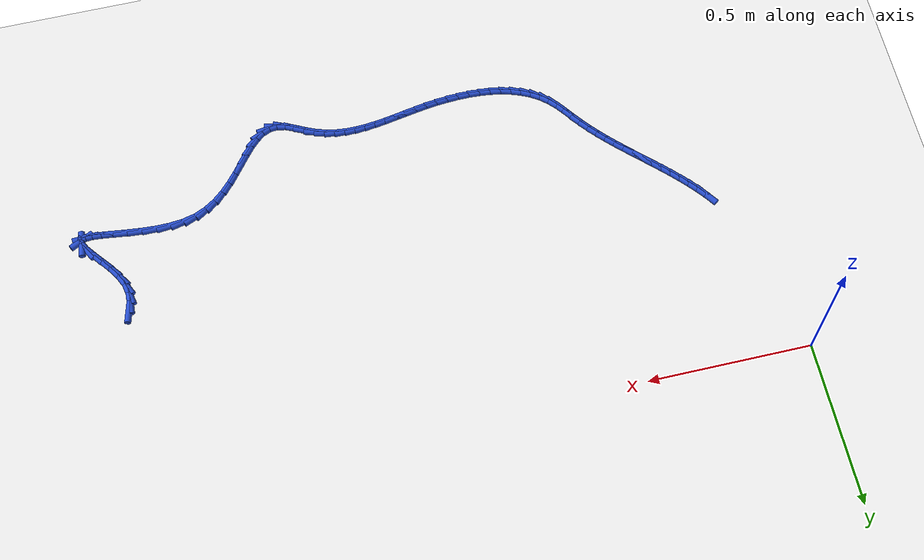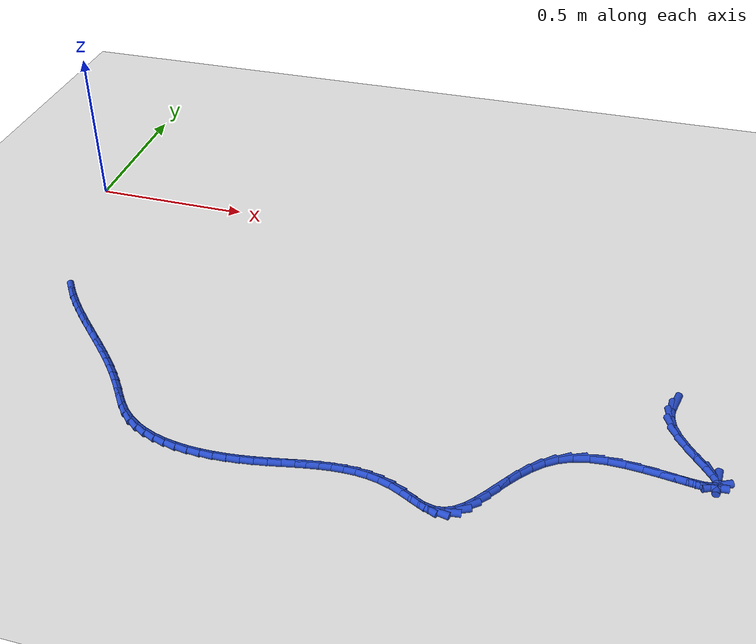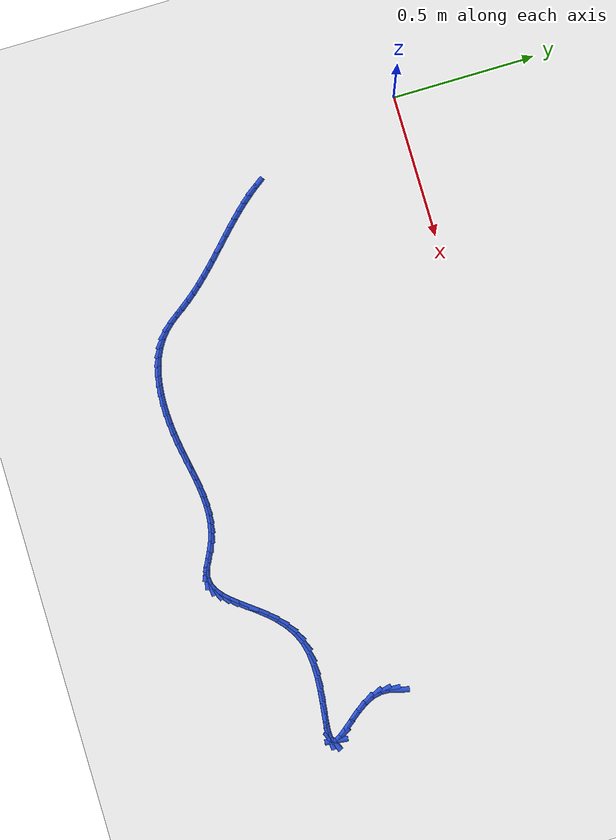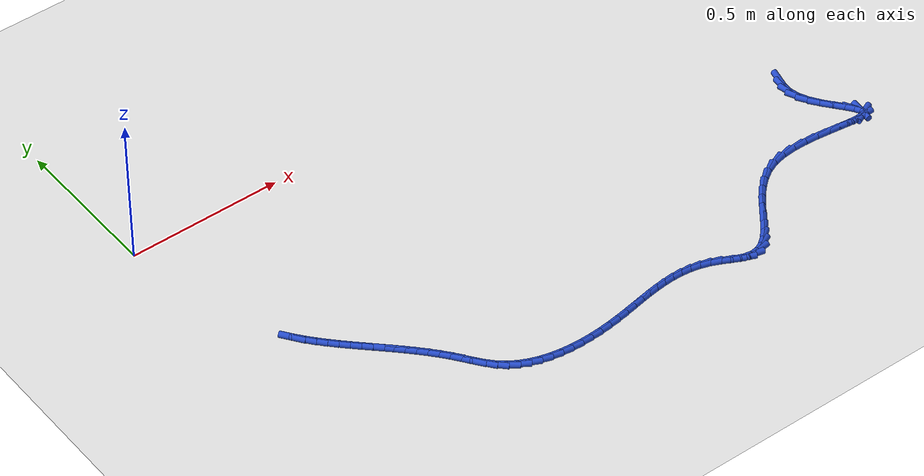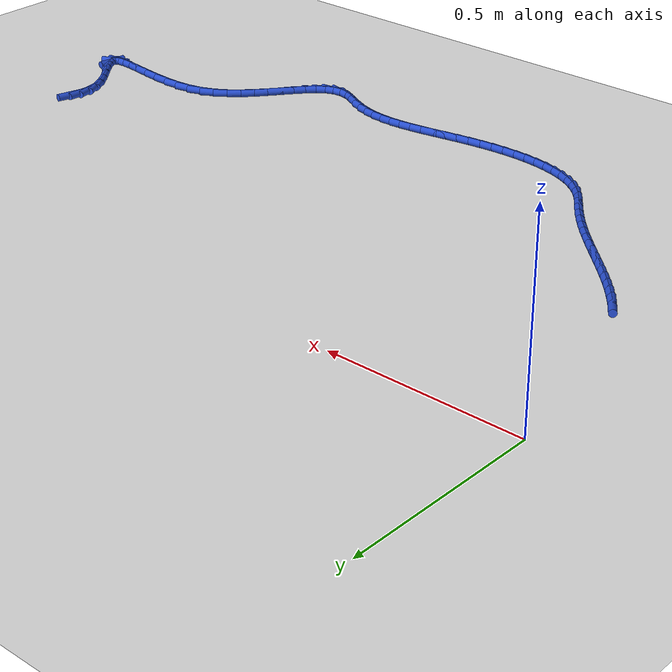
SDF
<sdf version="1.6">
 <world name="default">
  <model name="ground_plane">
   <static>1</static>
   <link name="link">
    <collision name="collision">
     <geometry><plane><normal>0 0 1</normal><size>100 100</size></plane></geometry>
     <surface><friction><ode><mu>100</mu><mu2>50</mu2></ode></friction></surface>
    </collision>
    <visual name="visual">
     <cast_shadows>0</cast_shadows>
     <geometry><plane><normal>0 0 1</normal><size>100 100</size></plane></geometry>
     <material>
      <script><uri>file://media/materials/scripts/gazebo.material</uri><name>Gazebo/WhiteGlow</name></script>
     </material>
    </visual>
   </link>
  </model>
  <model name="line">
   <link name="link_135">
    <pose>1.943686928564302 -0.5652032840955692 0.01 0 1.57 1.309454143577159</pose>
    <collision name="collision">
     <geometry><cylinder><radius>0.01</radius><length>0.08</length></cylinder></geometry>
    </collision>
    <visual name="visual">
     <material>
      <script><name>Gazebo/Blue</name><uri>file://media/materials/scripts/gazebo.material</uri></script>
     </material>
     <geometry><cylinder><radius>0.01</radius><length>0.08</length></cylinder></geometry>
    </visual>
   </link>
   <link name="link_136">
    <pose>1.9362048129154479 -0.593178074391091 0.01 0 1.57 1.531690381815377</pose>
    <collision name="collision">
     <geometry><cylinder><radius>0.01</radius><length>0.08</length></cylinder></geometry>
    </collision>
    <visual name="visual">
     <material>
      <script><name>Gazebo/Blue</name><uri>file://media/materials/scripts/gazebo.material</uri></script>
     </material>
     <geometry><cylinder><radius>0.01</radius><length>0.08</length></cylinder></geometry>
    </visual>
   </link>
   <link name="link_137">
    <pose>1.9350808132411823 -0.6219058457888912 0.01 0 1.57 -1.3657696198299845</pose>
    <collision name="collision">
     <geometry><cylinder><radius>0.01</radius><length>0.08</length></cylinder></geometry>
    </collision>
    <visual name="visual">
     <material>
      <script><name>Gazebo/Blue</name><uri>file://media/materials/scripts/gazebo.material</uri></script>
     </material>
     <geometry><cylinder><radius>0.01</radius><length>0.08</length></cylinder></geometry>
    </visual>
   </link>
   <link name="link_138">
    <pose>1.941255157980657 -0.6515975215187342 0.01 0 1.57 -1.1382711557492136</pose>
    <collision name="collision">
     <geometry><cylinder><radius>0.01</radius><length>0.08</length></cylinder></geometry>
    </collision>
    <visual name="visual">
     <material>
      <script><name>Gazebo/Blue</name><uri>file://media/materials/scripts/gazebo.material</uri></script>
     </material>
     <geometry><cylinder><radius>0.01</radius><length>0.08</length></cylinder></geometry>
    </visual>
   </link>
   <link name="link_139">
    <pose>1.9554730133591482 -0.6823933725908009 0.01 0 1.57 -0.9889522151023996</pose>
    <collision name="collision">
     <geometry><cylinder><radius>0.01</radius><length>0.08</length></cylinder></geometry>
    </collision>
    <visual name="visual">
     <material>
      <script><name>Gazebo/Blue</name><uri>file://media/materials/scripts/gazebo.material</uri></script>
     </material>
     <geometry><cylinder><radius>0.01</radius><length>0.08</length></cylinder></geometry>
    </visual>
   </link>
   <link name="link_140">
    <pose>1.9759456231310004 -0.7135158743885804 0.01 0 1.57 -0.9136879942157506</pose>
    <collision name="collision">
     <geometry><cylinder><radius>0.01</radius><length>0.08</length></cylinder></geometry>
    </collision>
    <visual name="visual">
     <material>
      <script><name>Gazebo/Blue</name><uri>file://media/materials/scripts/gazebo.material</uri></script>
     </material>
     <geometry><cylinder><radius>0.01</radius><length>0.08</length></cylinder></geometry>
    </visual>
   </link>
   <link name="link_141">
    <pose>1.9991133969310126 -0.7435460999522928 0.01 0 1.57 -0.8902662139354166</pose>
    <collision name="collision">
     <geometry><cylinder><radius>0.01</radius><length>0.08</length></cylinder></geometry>
    </collision>
    <visual name="visual">
     <material>
      <script><name>Gazebo/Blue</name><uri>file://media/materials/scripts/gazebo.material</uri></script>
     </material>
     <geometry><cylinder><radius>0.01</radius><length>0.08</length></cylinder></geometry>
    </visual>
   </link>
   <link name="link_142">
    <pose>2.0213804690759773 -0.7710519832744562 0.01 0 1.57 -0.9243557936976852</pose>
    <collision name="collision">
     <geometry><cylinder><radius>0.01</radius><length>0.08</length></cylinder></geometry>
    </collision>
    <visual name="visual">
     <material>
      <script><name>Gazebo/Blue</name><uri>file://media/materials/scripts/gazebo.material</uri></script>
     </material>
     <geometry><cylinder><radius>0.01</radius><length>0.08</length></cylinder></geometry>
    </visual>
   </link>
   <link name="link_143">
    <pose>2.0391509738826885 -0.7946014583475888 0.01 0 1.57 -1.0811732387302369</pose>
    <collision name="collision">
     <geometry><cylinder><radius>0.01</radius><length>0.08</length></cylinder></geometry>
    </collision>
    <visual name="visual">
     <material>
      <script><name>Gazebo/Blue</name><uri>file://media/materials/scripts/gazebo.material</uri></script>
     </material>
     <geometry><cylinder><radius>0.01</radius><length>0.08</length></cylinder></geometry>
    </visual>
   </link>
   <link name="link_144">
    <pose>2.048829045667937 -0.8127624591642073 0.01 0 1.57 1.4550749162569783</pose>
    <collision name="collision">
     <geometry><cylinder><radius>0.01</radius><length>0.08</length></cylinder></geometry>
    </collision>
    <visual name="visual">
     <material>
      <script><name>Gazebo/Blue</name><uri>file://media/materials/scripts/gazebo.material</uri></script>
     </material>
     <geometry><cylinder><radius>0.01</radius><length>0.08</length></cylinder></geometry>
    </visual>
   </link>
   <link name="link_145">
    <pose>2.0474711005845543 -0.8244446365852564 0.01 0 1.57 0.4564151952336193</pose>
    <collision name="collision">
     <geometry><cylinder><radius>0.01</radius><length>0.08</length></cylinder></geometry>
    </collision>
    <visual name="visual">
     <material>
      <script><name>Gazebo/Blue</name><uri>file://media/materials/scripts/gazebo.material</uri></script>
     </material>
     <geometry><cylinder><radius>0.01</radius><length>0.08</length></cylinder></geometry>
    </visual>
   </link>
   <link name="link_146">
    <pose>2.035501081922877 -0.8303218188014732 0.01 0 1.57 0.062253946918255774</pose>
    <collision name="collision">
     <geometry><cylinder><radius>0.01</radius><length>0.08</length></cylinder></geometry>
    </collision>
    <visual name="visual">
     <material>
      <script><name>Gazebo/Blue</name><uri>file://media/materials/scripts/gazebo.material</uri></script>
     </material>
     <geometry><cylinder><radius>0.01</radius><length>0.08</length></cylinder></geometry>
    </visual>
   </link>
   <link name="link_147">
    <pose>2.0144265000245123 -0.8316354922136412 0.01 0 1.57 -0.06992417771216018</pose>
    <collision name="collision">
     <geometry><cylinder><radius>0.01</radius><length>0.08</length></cylinder></geometry>
    </collision>
    <visual name="visual">
     <material>
      <script><name>Gazebo/Blue</name><uri>file://media/materials/scripts/gazebo.material</uri></script>
     </material>
     <geometry><cylinder><radius>0.01</radius><length>0.08</length></cylinder></geometry>
    </visual>
   </link>
   <link name="link_148">
    <pose>1.9857553821935419 -0.8296274140484176 0.01 0 1.57 -0.11707198856153848</pose>
    <collision name="collision">
     <geometry><cylinder><radius>0.01</radius><length>0.08</length></cylinder></geometry>
    </collision>
    <visual name="visual">
     <material>
      <script><name>Gazebo/Blue</name><uri>file://media/materials/scripts/gazebo.material</uri></script>
     </material>
     <geometry><cylinder><radius>0.01</radius><length>0.08</length></cylinder></geometry>
    </visual>
   </link>
   <link name="link_149">
    <pose>1.950995755734048 -0.8255393415324594 0.01 0 1.57 -0.12457514145057941</pose>
    <collision name="collision">
     <geometry><cylinder><radius>0.01</radius><length>0.08</length></cylinder></geometry>
    </collision>
    <visual name="visual">
     <material>
      <script><name>Gazebo/Blue</name><uri>file://media/materials/scripts/gazebo.material</uri></script>
     </material>
     <geometry><cylinder><radius>0.01</radius><length>0.08</length></cylinder></geometry>
    </visual>
   </link>
   <link name="link_150">
    <pose>1.9116556479501141 -0.8206130318924243 0.01 0 1.57 -0.10623648999890499</pose>
    <collision name="collision">
     <geometry><cylinder><radius>0.01</radius><length>0.08</length></cylinder></geometry>
    </collision>
    <visual name="visual">
     <material>
      <script><name>Gazebo/Blue</name><uri>file://media/materials/scripts/gazebo.material</uri></script>
     </material>
     <geometry><cylinder><radius>0.01</radius><length>0.08</length></cylinder></geometry>
    </visual>
   </link>
   <link name="link_151">
    <pose>1.8692430861458225 -0.8160902423549692 0.01 0 1.57 -0.06533908417008316</pose>
    <collision name="collision">
     <geometry><cylinder><radius>0.01</radius><length>0.08</length></cylinder></geometry>
    </collision>
    <visual name="visual">
     <material>
      <script><name>Gazebo/Blue</name><uri>file://media/materials/scripts/gazebo.material</uri></script>
     </material>
     <geometry><cylinder><radius>0.01</radius><length>0.08</length></cylinder></geometry>
    </visual>
   </link>
   <link name="link_152">
    <pose>1.8252660976252548 -0.8132127301467512 0.01 0 1.57 0.00021625289297713047</pose>
    <collision name="collision">
     <geometry><cylinder><radius>0.01</radius><length>0.08</length></cylinder></geometry>
    </collision>
    <visual name="visual">
     <material>
      <script><name>Gazebo/Blue</name><uri>file://media/materials/scripts/gazebo.material</uri></script>
     </material>
     <geometry><cylinder><radius>0.01</radius><length>0.08</length></cylinder></geometry>
    </visual>
   </link>
   <link name="link_153">
    <pose>1.781232709692492 -0.8132222524944277 0.01 0 1.57 0.09688088846005076</pose>
    <collision name="collision">
     <geometry><cylinder><radius>0.01</radius><length>0.08</length></cylinder></geometry>
    </collision>
    <visual name="visual">
     <material>
      <script><name>Gazebo/Blue</name><uri>file://media/materials/scripts/gazebo.material</uri></script>
     </material>
     <geometry><cylinder><radius>0.01</radius><length>0.08</length></cylinder></geometry>
    </visual>
   </link>
   <link name="link_154">
    <pose>1.7386509496516196 -0.817360566624656 0.01 0 1.57 0.23553138282517894</pose>
    <collision name="collision">
     <geometry><cylinder><radius>0.01</radius><length>0.08</length></cylinder></geometry>
    </collision>
    <visual name="visual">
     <material>
      <script><name>Gazebo/Blue</name><uri>file://media/materials/scripts/gazebo.material</uri></script>
     </material>
     <geometry><cylinder><radius>0.01</radius><length>0.08</length></cylinder></geometry>
    </visual>
   </link>
   <link name="link_155">
    <pose>1.699028757084384 -0.8268693230305725 0.01 0 1.57 0.4137521122782563</pose>
    <collision name="collision">
     <geometry><cylinder><radius>0.01</radius><length>0.08</length></cylinder></geometry>
    </collision>
    <visual name="visual">
     <material>
      <script><name>Gazebo/Blue</name><uri>file://media/materials/scripts/gazebo.material</uri></script>
     </material>
     <geometry><cylinder><radius>0.01</radius><length>0.08</length></cylinder></geometry>
    </visual>
   </link>
   <link name="link_156">
    <pose>1.6634607128892744 -0.8424872304158302 0.01 0 1.57 0.5794523239279763</pose>
    <collision name="collision">
     <geometry><cylinder><radius>0.01</radius><length>0.08</length></cylinder></geometry>
    </collision>
    <visual name="visual">
     <material>
      <script><name>Gazebo/Blue</name><uri>file://media/materials/scripts/gazebo.material</uri></script>
     </material>
     <geometry><cylinder><radius>0.01</radius><length>0.08</length></cylinder></geometry>
    </visual>
   </link>
   <link name="link_157">
    <pose>1.6316733331417934 -0.8632884456116601 0.01 0 1.57 0.7132968622097967</pose>
    <collision name="collision">
     <geometry><cylinder><radius>0.01</radius><length>0.08</length></cylinder></geometry>
    </collision>
    <visual name="visual">
     <material>
      <script><name>Gazebo/Blue</name><uri>file://media/materials/scripts/gazebo.material</uri></script>
     </material>
     <geometry><cylinder><radius>0.01</radius><length>0.08</length></cylinder></geometry>
    </visual>
   </link>
   <link name="link_158">
    <pose>1.6031104923713968 -0.8880032298189146 0.01 0 1.57 0.8128861399773062</pose>
    <collision name="collision">
     <geometry><cylinder><radius>0.01</radius><length>0.08</length></cylinder></geometry>
    </collision>
    <visual name="visual">
     <material>
      <script><name>Gazebo/Blue</name><uri>file://media/materials/scripts/gazebo.material</uri></script>
     </material>
     <geometry><cylinder><radius>0.01</radius><length>0.08</length></cylinder></geometry>
    </visual>
   </link>
   <link name="link_159">
    <pose>1.5772160651075402 -0.9153618442384474 0.01 0 1.57 0.879390241149504</pose>
    <collision name="collision">
     <geometry><cylinder><radius>0.01</radius><length>0.08</length></cylinder></geometry>
    </collision>
    <visual name="visual">
     <material>
      <script><name>Gazebo/Blue</name><uri>file://media/materials/scripts/gazebo.material</uri></script>
     </material>
     <geometry><cylinder><radius>0.01</radius><length>0.08</length></cylinder></geometry>
    </visual>
   </link>
   <link name="link_160">
    <pose>1.5534339258796792 -0.9440945500711126 0.01 0 1.57 0.9141509893890772</pose>
    <collision name="collision">
     <geometry><cylinder><radius>0.01</radius><length>0.08</length></cylinder></geometry>
    </collision>
    <visual name="visual">
     <material>
      <script><name>Gazebo/Blue</name><uri>file://media/materials/scripts/gazebo.material</uri></script>
     </material>
     <geometry><cylinder><radius>0.01</radius><length>0.08</length></cylinder></geometry>
    </visual>
   </link>
   <link name="link_161">
    <pose>1.5312079492172694 -0.9729316085177643 0.01 0 1.57 0.9164634974692445</pose>
    <collision name="collision">
     <geometry><cylinder><radius>0.01</radius><length>0.08</length></cylinder></geometry>
    </collision>
    <visual name="visual">
     <material>
      <script><name>Gazebo/Blue</name><uri>file://media/materials/scripts/gazebo.material</uri></script>
     </material>
     <geometry><cylinder><radius>0.01</radius><length>0.08</length></cylinder></geometry>
    </visual>
   </link>
   <link name="link_162">
    <pose>1.5099820096497654 -1.000603280779256 0.01 0 1.57 0.8818958102058948</pose>
    <collision name="collision">
     <geometry><cylinder><radius>0.01</radius><length>0.08</length></cylinder></geometry>
    </collision>
    <visual name="visual">
     <material>
      <script><name>Gazebo/Blue</name><uri>file://media/materials/scripts/gazebo.material</uri></script>
     </material>
     <geometry><cylinder><radius>0.01</radius><length>0.08</length></cylinder></geometry>
    </visual>
   </link>
   <link name="link_163">
    <pose>1.4891999817066248 -1.0258398280564403 0.01 0 1.57 0.8004218485665678</pose>
    <collision name="collision">
     <geometry><cylinder><radius>0.01</radius><length>0.08</length></cylinder></geometry>
    </collision>
    <visual name="visual">
     <material>
      <script><name>Gazebo/Blue</name><uri>file://media/materials/scripts/gazebo.material</uri></script>
     </material>
     <geometry><cylinder><radius>0.01</radius><length>0.08</length></cylinder></geometry>
    </visual>
   </link>
   <link name="link_164">
    <pose>1.4683057399173023 -1.0473715115501718 0.01 0 1.57 0.6548349566320318</pose>
    <collision name="collision">
     <geometry><cylinder><radius>0.01</radius><length>0.08</length></cylinder></geometry>
    </collision>
    <visual name="visual">
     <material>
      <script><name>Gazebo/Blue</name><uri>file://media/materials/scripts/gazebo.material</uri></script>
     </material>
     <geometry><cylinder><radius>0.01</radius><length>0.08</length></cylinder></geometry>
    </visual>
   </link>
   <link name="link_165">
    <pose>1.4467431588112536 -1.0639285924613042 0.01 0 1.57 0.42498930825960324</pose>
    <collision name="collision">
     <geometry><cylinder><radius>0.01</radius><length>0.08</length></cylinder></geometry>
    </collision>
    <visual name="visual">
     <material>
      <script><name>Gazebo/Blue</name><uri>file://media/materials/scripts/gazebo.material</uri></script>
     </material>
     <geometry><cylinder><radius>0.01</radius><length>0.08</length></cylinder></geometry>
    </visual>
   </link>
   <link name="link_166">
    <pose>1.4239561129179332 -1.074241331990691 0.01 0 1.57 0.1134275469461102</pose>
    <collision name="collision">
     <geometry><cylinder><radius>0.01</radius><length>0.08</length></cylinder></geometry>
    </collision>
    <visual name="visual">
     <material>
      <script><name>Gazebo/Blue</name><uri>file://media/materials/scripts/gazebo.material</uri></script>
     </material>
     <geometry><cylinder><radius>0.01</radius><length>0.08</length></cylinder></geometry>
    </visual>
   </link>
   <link name="link_167">
    <pose>1.3993884767667988 -1.0770399913391855 0.01 0 1.57 -0.21298570388281002</pose>
    <collision name="collision">
     <geometry><cylinder><radius>0.01</radius><length>0.08</length></cylinder></geometry>
    </collision>
    <visual name="visual">
     <material>
      <script><name>Gazebo/Blue</name><uri>file://media/materials/scripts/gazebo.material</uri></script>
     </material>
     <geometry><cylinder><radius>0.01</radius><length>0.08</length></cylinder></geometry>
    </visual>
   </link>
   <link name="link_168">
    <pose>1.3725271786767472 -1.0712308116265927 0.01 0 1.57 -0.4101449970230879</pose>
    <collision name="collision">
     <geometry><cylinder><radius>0.01</radius><length>0.08</length></cylinder></geometry>
    </collision>
    <visual name="visual">
     <material>
      <script><name>Gazebo/Blue</name><uri>file://media/materials/scripts/gazebo.material</uri></script>
     </material>
     <geometry><cylinder><radius>0.01</radius><length>0.08</length></cylinder></geometry>
    </visual>
   </link>
   <link name="link_169">
    <pose>1.343573975380678 -1.058641854513692 0.01 0 1.57 -0.463826134459821</pose>
    <collision name="collision">
     <geometry><cylinder><radius>0.01</radius><length>0.08</length></cylinder></geometry>
    </collision>
    <visual name="visual">
     <material>
      <script><name>Gazebo/Blue</name><uri>file://media/materials/scripts/gazebo.material</uri></script>
     </material>
     <geometry><cylinder><radius>0.01</radius><length>0.08</length></cylinder></geometry>
    </visual>
   </link>
   <link name="link_170">
    <pose>1.3133194119864406 -1.0435078207015178 0.01 0 1.57 -0.41194430460951686</pose>
    <collision name="collision">
     <geometry><cylinder><radius>0.01</radius><length>0.08</length></cylinder></geometry>
    </collision>
    <visual name="visual">
     <material>
      <script><name>Gazebo/Blue</name><uri>file://media/materials/scripts/gazebo.material</uri></script>
     </material>
     <geometry><cylinder><radius>0.01</radius><length>0.08</length></cylinder></geometry>
    </visual>
   </link>
   <link name="link_171">
    <pose>1.2825594284735298 -1.0300674072517235 0.01 0 1.57 -0.3018974104742478</pose>
    <collision name="collision">
     <geometry><cylinder><radius>0.01</radius><length>0.08</length></cylinder></geometry>
    </collision>
    <visual name="visual">
     <material>
      <script><name>Gazebo/Blue</name><uri>file://media/materials/scripts/gazebo.material</uri></script>
     </material>
     <geometry><cylinder><radius>0.01</radius><length>0.08</length></cylinder></geometry>
    </visual>
   </link>
   <link name="link_172">
    <pose>1.251713542465014 -1.020461491098082 0.01 0 1.57 -0.1939978709298254</pose>
    <collision name="collision">
     <geometry><cylinder><radius>0.01</radius><length>0.08</length></cylinder></geometry>
    </collision>
    <visual name="visual">
     <material>
      <script><name>Gazebo/Blue</name><uri>file://media/materials/scripts/gazebo.material</uri></script>
     </material>
     <geometry><cylinder><radius>0.01</radius><length>0.08</length></cylinder></geometry>
    </visual>
   </link>
   <link name="link_173">
    <pose>1.2207615558098217 -1.0143803917465228 0.01 0 1.57 -0.09630779037442809</pose>
    <collision name="collision">
     <geometry><cylinder><radius>0.01</radius><length>0.08</length></cylinder></geometry>
    </collision>
    <visual name="visual">
     <material>
      <script><name>Gazebo/Blue</name><uri>file://media/materials/scripts/gazebo.material</uri></script>
     </material>
     <geometry><cylinder><radius>0.01</radius><length>0.08</length></cylinder></geometry>
    </visual>
   </link>
   <link name="link_174">
    <pose>1.1896583625396846 -1.011375616224489 0.01 0 1.57 -0.012042568490292595</pose>
    <collision name="collision">
     <geometry><cylinder><radius>0.01</radius><length>0.08</length></cylinder></geometry>
    </collision>
    <visual name="visual">
     <material>
      <script><name>Gazebo/Blue</name><uri>file://media/materials/scripts/gazebo.material</uri></script>
     </material>
     <geometry><cylinder><radius>0.01</radius><length>0.08</length></cylinder></geometry>
    </visual>
   </link>
   <link name="link_175">
    <pose>1.158358856686336 -1.0109986715594221 0.01 0 1.57 0.05708251044525007</pose>
    <collision name="collision">
     <geometry><cylinder><radius>0.01</radius><length>0.08</length></cylinder></geometry>
    </collision>
    <visual name="visual">
     <material>
      <script><name>Gazebo/Blue</name><uri>file://media/materials/scripts/gazebo.material</uri></script>
     </material>
     <geometry><cylinder><radius>0.01</radius><length>0.08</length></cylinder></geometry>
    </visual>
   </link>
   <link name="link_176">
    <pose>1.126817932281509 -1.0128010647787653 0.01 0 1.57 0.11055960852285832</pose>
    <collision name="collision">
     <geometry><cylinder><radius>0.01</radius><length>0.08</length></cylinder></geometry>
    </collision>
    <visual name="visual">
     <material>
      <script><name>Gazebo/Blue</name><uri>file://media/materials/scripts/gazebo.material</uri></script>
     </material>
     <geometry><cylinder><radius>0.01</radius><length>0.08</length></cylinder></geometry>
    </visual>
   </link>
   <link name="link_177">
    <pose>1.094990483356936 -1.0163343029099603 0.01 0 1.57 0.1486383817785153</pose>
    <collision name="collision">
     <geometry><cylinder><radius>0.01</radius><length>0.08</length></cylinder></geometry>
    </collision>
    <visual name="visual">
     <material>
      <script><name>Gazebo/Blue</name><uri>file://media/materials/scripts/gazebo.material</uri></script>
     </material>
     <geometry><cylinder><radius>0.01</radius><length>0.08</length></cylinder></geometry>
    </visual>
   </link>
   <link name="link_178">
    <pose>1.0628314039443492 -1.0211498929804501 0.01 0 1.57 0.17192368538198788</pose>
    <collision name="collision">
     <geometry><cylinder><radius>0.01</radius><length>0.08</length></cylinder></geometry>
    </collision>
    <visual name="visual">
     <material>
      <script><name>Gazebo/Blue</name><uri>file://media/materials/scripts/gazebo.material</uri></script>
     </material>
     <geometry><cylinder><radius>0.01</radius><length>0.08</length></cylinder></geometry>
    </visual>
   </link>
   <link name="link_179">
    <pose>1.0302955880754805 -1.0267993420176766 0.01 0 1.57 0.18110188122027135</pose>
    <collision name="collision">
     <geometry><cylinder><radius>0.01</radius><length>0.08</length></cylinder></geometry>
    </collision>
    <visual name="visual">
     <material>
      <script><name>Gazebo/Blue</name><uri>file://media/materials/scripts/gazebo.material</uri></script>
     </material>
     <geometry><cylinder><radius>0.01</radius><length>0.08</length></cylinder></geometry>
    </visual>
   </link>
   <link name="link_180">
    <pose>0.9973379297820649 -1.0328341570490827 0.01 0 1.57 0.176796075617315</pose>
    <collision name="collision">
     <geometry><cylinder><radius>0.01</radius><length>0.08</length></cylinder></geometry>
    </collision>
    <visual name="visual">
     <material>
      <script><name>Gazebo/Blue</name><uri>file://media/materials/scripts/gazebo.material</uri></script>
     </material>
     <geometry><cylinder><radius>0.01</radius><length>0.08</length></cylinder></geometry>
    </visual>
   </link>
   <link name="link_181">
    <pose>0.9639133230958338 -1.0388058451021105 0.01 0 1.57 0.15952288904641007</pose>
    <collision name="collision">
     <geometry><cylinder><radius>0.01</radius><length>0.08</length></cylinder></geometry>
    </collision>
    <visual name="visual">
     <material>
      <script><name>Gazebo/Blue</name><uri>file://media/materials/scripts/gazebo.material</uri></script>
     </material>
     <geometry><cylinder><radius>0.01</radius><length>0.08</length></cylinder></geometry>
    </visual>
   </link>
   <link name="link_182">
    <pose>0.9299766620485196 -1.0442659132042018 0.01 0 1.57 0.13032091084499253</pose>
    <collision name="collision">
     <geometry><cylinder><radius>0.01</radius><length>0.08</length></cylinder></geometry>
    </collision>
    <visual name="visual">
     <material>
      <script><name>Gazebo/Blue</name><uri>file://media/materials/scripts/gazebo.material</uri></script>
     </material>
     <geometry><cylinder><radius>0.01</radius><length>0.08</length></cylinder></geometry>
    </visual>
   </link>
   <link name="link_183">
    <pose>0.8955054081567226 -1.048783844235768 0.01 0 1.57 0.09441054995714458</pose>
    <collision name="collision">
     <geometry><cylinder><radius>0.01</radius><length>0.08</length></cylinder></geometry>
    </collision>
    <visual name="visual">
     <material>
      <script><name>Gazebo/Blue</name><uri>file://media/materials/scripts/gazebo.material</uri></script>
     </material>
     <geometry><cylinder><radius>0.01</radius><length>0.08</length></cylinder></geometry>
    </visual>
   </link>
   <link name="link_184">
    <pose>0.860669602970409 -1.0520825183381304 0.01 0 1.57 0.05376587348340598</pose>
    <collision name="collision">
     <geometry><cylinder><radius>0.01</radius><length>0.08</length></cylinder></geometry>
    </collision>
    <visual name="visual">
     <material>
      <script><name>Gazebo/Blue</name><uri>file://media/materials/scripts/gazebo.material</uri></script>
     </material>
     <geometry><cylinder><radius>0.01</radius><length>0.08</length></cylinder></geometry>
    </visual>
   </link>
   <link name="link_185">
    <pose>0.8257368415096638 -1.0539625206713858 0.01 0 1.57 0.007551940321568541</pose>
    <collision name="collision">
     <geometry><cylinder><radius>0.01</radius><length>0.08</length></cylinder></geometry>
    </collision>
    <visual name="visual">
     <material>
      <script><name>Gazebo/Blue</name><uri>file://media/materials/scripts/gazebo.material</uri></script>
     </material>
     <geometry><cylinder><radius>0.01</radius><length>0.08</length></cylinder></geometry>
    </visual>
   </link>
   <link name="link_186">
    <pose>0.7909754783400222 -1.0542250414022352 0.01 0 1.57 -0.04524002611197806</pose>
    <collision name="collision">
     <geometry><cylinder><radius>0.01</radius><length>0.08</length></cylinder></geometry>
    </collision>
    <visual name="visual">
     <material>
      <script><name>Gazebo/Blue</name><uri>file://media/materials/scripts/gazebo.material</uri></script>
     </material>
     <geometry><cylinder><radius>0.01</radius><length>0.08</length></cylinder></geometry>
    </visual>
   </link>
   <link name="link_187">
    <pose>0.7566538680270193 -1.0526712706973782 0.01 0 1.57 -0.10577747558160423</pose>
    <collision name="collision">
     <geometry><cylinder><radius>0.01</radius><length>0.08</length></cylinder></geometry>
    </collision>
    <visual name="visual">
     <material>
      <script><name>Gazebo/Blue</name><uri>file://media/materials/scripts/gazebo.material</uri></script>
     </material>
     <geometry><cylinder><radius>0.01</radius><length>0.08</length></cylinder></geometry>
    </visual>
   </link>
   <link name="link_188">
    <pose>0.7230403651361901 -1.0491023987235146 0.01 0 1.57 -0.175364622504665</pose>
    <collision name="collision">
     <geometry><cylinder><radius>0.01</radius><length>0.08</length></cylinder></geometry>
    </collision>
    <visual name="visual">
     <material>
      <script><name>Gazebo/Blue</name><uri>file://media/materials/scripts/gazebo.material</uri></script>
     </material>
     <geometry><cylinder><radius>0.01</radius><length>0.08</length></cylinder></geometry>
    </visual>
   </link>
   <link name="link_189">
    <pose>0.6904033242330716 -1.0433196156473452 0.01 0 1.57 -0.25536813653656454</pose>
    <collision name="collision">
     <geometry><cylinder><radius>0.01</radius><length>0.08</length></cylinder></geometry>
    </collision>
    <visual name="visual">
     <material>
      <script><name>Gazebo/Blue</name><uri>file://media/materials/scripts/gazebo.material</uri></script>
     </material>
     <geometry><cylinder><radius>0.01</radius><length>0.08</length></cylinder></geometry>
    </visual>
   </link>
   <link name="link_190">
    <pose>0.6590110998831984 -1.0351241116355698 0.01 0 1.57 -0.34705324715202146</pose>
    <collision name="collision">
     <geometry><cylinder><radius>0.01</radius><length>0.08</length></cylinder></geometry>
    </collision>
    <visual name="visual">
     <material>
      <script><name>Gazebo/Blue</name><uri>file://media/materials/scripts/gazebo.material</uri></script>
     </material>
     <geometry><cylinder><radius>0.01</radius><length>0.08</length></cylinder></geometry>
    </visual>
   </link>
   <link name="link_191">
    <pose>0.629132046652106 -1.0243170768548886 0.01 0 1.57 -0.45128974014476086</pose>
    <collision name="collision">
     <geometry><cylinder><radius>0.01</radius><length>0.08</length></cylinder></geometry>
    </collision>
    <visual name="visual">
     <material>
      <script><name>Gazebo/Blue</name><uri>file://media/materials/scripts/gazebo.material</uri></script>
     </material>
     <geometry><cylinder><radius>0.01</radius><length>0.08</length></cylinder></geometry>
    </visual>
   </link>
   <link name="link_192">
    <pose>0.6010345191053293 -1.0106997014720012 0.01 0 1.57 -0.5681147697370227</pose>
    <collision name="collision">
     <geometry><cylinder><radius>0.01</radius><length>0.08</length></cylinder></geometry>
    </collision>
    <visual name="visual">
     <material>
      <script><name>Gazebo/Blue</name><uri>file://media/materials/scripts/gazebo.material</uri></script>
     </material>
     <geometry><cylinder><radius>0.01</radius><length>0.08</length></cylinder></geometry>
    </visual>
   </link>
   <link name="link_193">
    <pose>0.5749868718084054 -0.9940731756536084 0.01 0 1.57 -0.6962280525581219</pose>
    <collision name="collision">
     <geometry><cylinder><radius>0.01</radius><length>0.08</length></cylinder></geometry>
    </collision>
    <visual name="visual">
     <material>
      <script><name>Gazebo/Blue</name><uri>file://media/materials/scripts/gazebo.material</uri></script>
     </material>
     <geometry><cylinder><radius>0.01</radius><length>0.08</length></cylinder></geometry>
    </visual>
   </link>
   <link name="link_194">
    <pose>0.5512574593268686 -0.9742386895664105 0.01 0 1.57 -0.8235693038490856</pose>
    <collision name="collision">
     <geometry><cylinder><radius>0.01</radius><length>0.08</length></cylinder></geometry>
    </collision>
    <visual name="visual">
     <material>
      <script><name>Gazebo/Blue</name><uri>file://media/materials/scripts/gazebo.material</uri></script>
     </material>
     <geometry><cylinder><radius>0.01</radius><length>0.08</length></cylinder></geometry>
    </visual>
   </link>
   <link name="link_195">
    <pose>0.5299227556654212 -0.9512097521992271 0.01 0 1.57 -0.9081841436060224</pose>
    <collision name="collision">
     <geometry><cylinder><radius>0.01</radius><length>0.08</length></cylinder></geometry>
    </collision>
    <visual name="visual">
     <material>
      <script><name>Gazebo/Blue</name><uri>file://media/materials/scripts/gazebo.material</uri></script>
     </material>
     <geometry><cylinder><radius>0.01</radius><length>0.08</length></cylinder></geometry>
    </visual>
   </link>
   <link name="link_196">
    <pose>0.510207022903471 -0.9259428582784068 0.01 0 1.57 -0.9422129471489641</pose>
    <collision name="collision">
     <geometry><cylinder><radius>0.01</radius><length>0.08</length></cylinder></geometry>
    </collision>
    <visual name="visual">
     <material>
      <script><name>Gazebo/Blue</name><uri>file://media/materials/scripts/gazebo.material</uri></script>
     </material>
     <geometry><cylinder><radius>0.01</radius><length>0.08</length></cylinder></geometry>
    </visual>
   </link>
   <link name="link_197">
    <pose>0.49109801250195234 -0.899656205204686 0.01 0 1.57 -0.9289923507141307</pose>
    <collision name="collision">
     <geometry><cylinder><radius>0.01</radius><length>0.08</length></cylinder></geometry>
    </collision>
    <visual name="visual">
     <material>
      <script><name>Gazebo/Blue</name><uri>file://media/materials/scripts/gazebo.material</uri></script>
     </material>
     <geometry><cylinder><radius>0.01</radius><length>0.08</length></cylinder></geometry>
    </visual>
   </link>
   <link name="link_198">
    <pose>0.47159284296603865 -0.8735571514632087 0.01 0 1.57 -0.8897017004877223</pose>
    <collision name="collision">
     <geometry><cylinder><radius>0.01</radius><length>0.08</length></cylinder></geometry>
    </collision>
    <visual name="visual">
     <material>
      <script><name>Gazebo/Blue</name><uri>file://media/materials/scripts/gazebo.material</uri></script>
     </material>
     <geometry><cylinder><radius>0.01</radius><length>0.08</length></cylinder></geometry>
    </visual>
   </link>
   <link name="link_199">
    <pose>0.451143893144398 -0.84832628102298 0.01 0 1.57 -0.8540478437954354</pose>
    <collision name="collision">
     <geometry><cylinder><radius>0.01</radius><length>0.08</length></cylinder></geometry>
    </collision>
    <visual name="visual">
     <material>
      <script><name>Gazebo/Blue</name><uri>file://media/materials/scripts/gazebo.material</uri></script>
     </material>
     <geometry><cylinder><radius>0.01</radius><length>0.08</length></cylinder></geometry>
    </visual>
   </link>
   <link name="link_200">
    <pose>0.42985356992974727 -0.8238920407225252 0.01 0 1.57 -0.8244520670017694</pose>
    <collision name="collision">
     <geometry><cylinder><radius>0.01</radius><length>0.08</length></cylinder></geometry>
    </collision>
    <visual name="visual">
     <material>
      <script><name>Gazebo/Blue</name><uri>file://media/materials/scripts/gazebo.material</uri></script>
     </material>
     <geometry><cylinder><radius>0.01</radius><length>0.08</length></cylinder></geometry>
    </visual>
   </link>
   <link name="link_201">
    <pose>0.40787416534066306 -0.8001251561131697 0.01 0 1.57 -0.8009747691314517</pose>
    <collision name="collision">
     <geometry><cylinder><radius>0.01</radius><length>0.08</length></cylinder></geometry>
    </collision>
    <visual name="visual">
     <material>
      <script><name>Gazebo/Blue</name><uri>file://media/materials/scripts/gazebo.material</uri></script>
     </material>
     <geometry><cylinder><radius>0.01</radius><length>0.08</length></cylinder></geometry>
    </visual>
   </link>
   <link name="link_202">
    <pose>0.385357971395724 -0.7768963527462401 0.01 0 1.57 -0.7836332156454656</pose>
    <collision name="collision">
     <geometry><cylinder><radius>0.01</radius><length>0.08</length></cylinder></geometry>
    </collision>
    <visual name="visual">
     <material>
      <script><name>Gazebo/Blue</name><uri>file://media/materials/scripts/gazebo.material</uri></script>
     </material>
     <geometry><cylinder><radius>0.01</radius><length>0.08</length></cylinder></geometry>
    </visual>
   </link>
   <link name="link_203">
    <pose>0.3624572801135067 -0.7540763561730615 0.01 0 1.57 -0.7724278205083147</pose>
    <collision name="collision">
     <geometry><cylinder><radius>0.01</radius><length>0.08</length></cylinder></geometry>
    </collision>
    <visual name="visual">
     <material>
      <script><name>Gazebo/Blue</name><uri>file://media/materials/scripts/gazebo.material</uri></script>
     </material>
     <geometry><cylinder><radius>0.01</radius><length>0.08</length></cylinder></geometry>
    </visual>
   </link>
   <link name="link_204">
    <pose>0.3393243835125885 -0.7315358919449595 0.01 0 1.57 -0.767361760666531</pose>
    <collision name="collision">
     <geometry><cylinder><radius>0.01</radius><length>0.08</length></cylinder></geometry>
    </collision>
    <visual name="visual">
     <material>
      <script><name>Gazebo/Blue</name><uri>file://media/materials/scripts/gazebo.material</uri></script>
     </material>
     <geometry><cylinder><radius>0.01</radius><length>0.08</length></cylinder></geometry>
    </visual>
   </link>
   <link name="link_205">
    <pose>0.31611157361154657 -0.7091456856132595 0.01 0 1.57 -0.7684537478665483</pose>
    <collision name="collision">
     <geometry><cylinder><radius>0.01</radius><length>0.08</length></cylinder></geometry>
    </collision>
    <visual name="visual">
     <material>
      <script><name>Gazebo/Blue</name><uri>file://media/materials/scripts/gazebo.material</uri></script>
     </material>
     <geometry><cylinder><radius>0.01</radius><length>0.08</length></cylinder></geometry>
    </visual>
   </link>
   <link name="link_206">
    <pose>0.29297114242895783 -0.6867764627292869 0.01 0 1.57 -0.775744025162013</pose>
    <collision name="collision">
     <geometry><cylinder><radius>0.01</radius><length>0.08</length></cylinder></geometry>
    </collision>
    <visual name="visual">
     <material>
      <script><name>Gazebo/Blue</name><uri>file://media/materials/scripts/gazebo.material</uri></script>
     </material>
     <geometry><cylinder><radius>0.01</radius><length>0.08</length></cylinder></geometry>
    </visual>
   </link>
   <link name="link_207">
    <pose>0.2700553819834005 -0.6642989488443679 0.01 0 1.57 -0.7892935368892232</pose>
    <collision name="collision">
     <geometry><cylinder><radius>0.01</radius><length>0.08</length></cylinder></geometry>
    </collision>
    <visual name="visual">
     <material>
      <script><name>Gazebo/Blue</name><uri>file://media/materials/scripts/gazebo.material</uri></script>
     </material>
     <geometry><cylinder><radius>0.01</radius><length>0.08</length></cylinder></geometry>
    </visual>
   </link>
   <link name="link_208">
    <pose>0.2475165842934515 -0.641583869509828 0.01 0 1.57 -0.8091759288005579</pose>
    <collision name="collision">
     <geometry><cylinder><radius>0.01</radius><length>0.08</length></cylinder></geometry>
    </collision>
    <visual name="visual">
     <material>
      <script><name>Gazebo/Blue</name><uri>file://media/materials/scripts/gazebo.material</uri></script>
     </material>
     <geometry><cylinder><radius>0.01</radius><length>0.08</length></cylinder></geometry>
    </visual>
   </link>
   <link name="link_209">
    <pose>0.22550704137768812 -0.6185019502769928 0.01 0 1.57 -0.8354617596108538</pose>
    <collision name="collision">
     <geometry><cylinder><radius>0.01</radius><length>0.08</length></cylinder></geometry>
    </collision>
    <visual name="visual">
     <material>
      <script><name>Gazebo/Blue</name><uri>file://media/materials/scripts/gazebo.material</uri></script>
     </material>
     <geometry><cylinder><radius>0.01</radius><length>0.08</length></cylinder></geometry>
    </visual>
   </link>
   <link name="link_210">
    <pose>0.20417904525468702 -0.5949239166971872 0.01 0 1.57 -0.8681942633834638</pose>
    <collision name="collision">
     <geometry><cylinder><radius>0.01</radius><length>0.08</length></cylinder></geometry>
    </collision>
    <visual name="visual">
     <material>
      <script><name>Gazebo/Blue</name><uri>file://media/materials/scripts/gazebo.material</uri></script>
     </material>
     <geometry><cylinder><radius>0.01</radius><length>0.08</length></cylinder></geometry>
    </visual>
   </link>
   <link name="link_211">
    <pose>0.18368488794302668 -0.5707204943217381 0.01 0 1.57 -0.9073564586747986</pose>
    <collision name="collision">
     <geometry><cylinder><radius>0.01</radius><length>0.08</length></cylinder></geometry>
    </collision>
    <visual name="visual">
     <material>
      <script><name>Gazebo/Blue</name><uri>file://media/materials/scripts/gazebo.material</uri></script>
     </material>
     <geometry><cylinder><radius>0.01</radius><length>0.08</length></cylinder></geometry>
    </visual>
   </link>
   <link name="link_212">
    <pose>0.16417686146128382 -0.5457624087019703 0.01 0 1.57 -0.952830646144346</pose>
    <collision name="collision">
     <geometry><cylinder><radius>0.01</radius><length>0.08</length></cylinder></geometry>
    </collision>
    <visual name="visual">
     <material>
      <script><name>Gazebo/Blue</name><uri>file://media/materials/scripts/gazebo.material</uri></script>
     </material>
     <geometry><cylinder><radius>0.01</radius><length>0.08</length></cylinder></geometry>
    </visual>
   </link>
  </model>
 </world>
</sdf>
